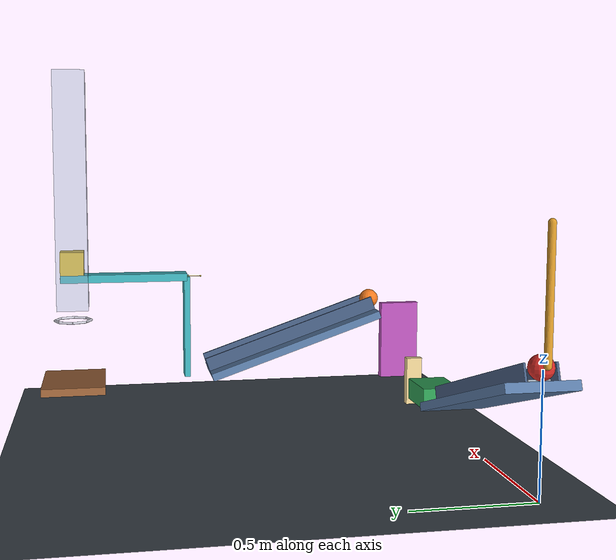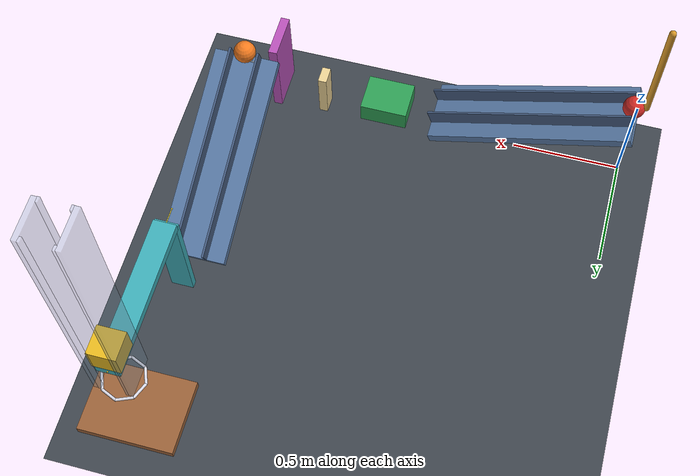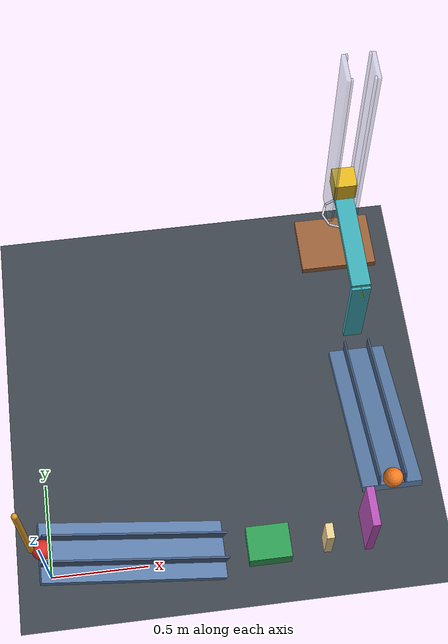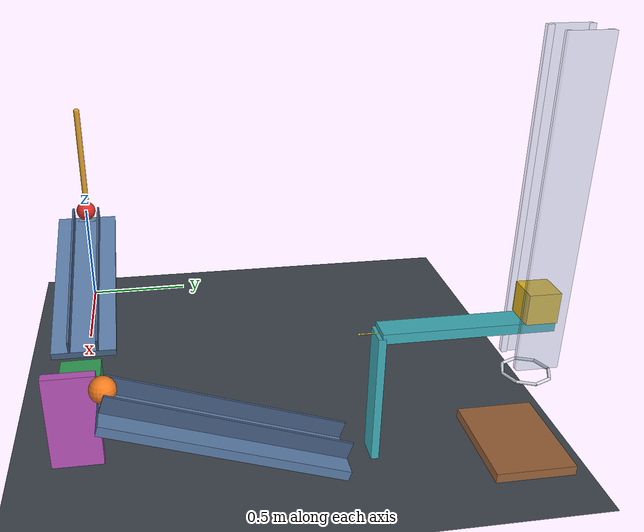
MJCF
<mujoco model="revised_passive_chain_candidate">
  <compiler angle="degree" autolimits="true"/>
  <option timestep="0.002" gravity="0 0 -9.81" integrator="implicitfast" solver="Newton" iterations="100" tolerance="1e-9"/>
  <size nconmax="500" njmax="2000"/>

  <!-- Untested passive candidate. No actuators or prescribed motion. -->
  <!-- All bodies start with zero velocity. -->
  <!-- Sliding friction is 0.68 on every contact geom. -->
  <!-- Low ramp rolling resistance preserves transfer energy. -->
  <!-- Higher floor rolling resistance helps the balls settle after their transfers. -->
  <!-- MuJoCo has no exact restitution attribute. -->
  <!-- solref damping ratio 0.6901 approximates restitution 0.05 for a linear impact. -->
  <!-- ring1 is octagonal with 0.16 m minimum clear opening across opposite facets. -->
  <!-- Its corner clearance accommodates an approximately upright 0.12 m cube. -->
  <!-- A truly circular 0.16 m aperture would not provide that clearance. -->

  <visual>
    <headlight ambient="0.35 0.35 0.35" diffuse="0.65 0.65 0.65" specular="0.2 0.2 0.2"/>
    <map znear="0.01" zfar="30"/>
  </visual>

  <worldbody>
    <light name="main_light" pos="0 -2 5" dir="0 0 -1" directional="true"/>
    <camera name="overview" pos="3.8 -4.8 3.1" xyaxes="0.85 0.53 0 -0.24 0.39 0.89"/>

    <geom name="floor" type="plane" size="8 8 0.1" pos="0 0 0" friction="0.68 0.005 0.01" condim="6" solref="0.006 0.6901" solimp="0.95 0.99 0.001" rgba="0.24 0.27 0.30 1"/>

    <!-- Overall rod length is 0.55 m, including capsule end caps. -->
    <body name="pendulum1" pos="-0.034 0 1.056565">
      <joint name="pendulum1_hinge" type="hinge" axis="0 1 0" range="-100 65" damping="0.04"/>
      <geom name="pendulum1_rod" type="capsule" fromto="0 0 -0.015 0 0 -0.535" size="0.015" mass="0.40" friction="0.68 0.005 0.001" condim="6" solref="0.006 0.6901" solimp="0.95 0.99 0.001" rgba="0.85 0.60 0.16 1"/>
    </body>

    <body name="ball1" pos="0.0162784 0 0.506565">
      <freejoint name="ball1_free"/>
      <geom name="ball1_sphere" type="sphere" size="0.05" mass="0.20" friction="0.68 0.005 0.001" condim="6" solref="0.006 0.6901" solimp="0.95 0.99 0.001" rgba="0.85 0.18 0.16 1"/>
    </body>

    <!-- Top length 0.95 m, width 0.30 m, inclination 19 degrees. -->
    <!-- Downhill top edge is approximately x = 0.898242, z = 0.15. -->
    <body name="ramp1" pos="0.442609 0 0.285734" quat="0.986285602 0 0.165047606 0">
      <geom name="ramp1_surface" type="box" size="0.475 0.15 0.02" density="0" friction="0.68 0.005 0.001" condim="6" solref="0.006 0.6901" solimp="0.95 0.99 0.001" rgba="0.35 0.48 0.65 1"/>
      <geom name="ramp1_rail_left" type="box" pos="0 -0.065 0.055" size="0.475 0.005 0.035" density="0" friction="0.68 0.005 0.001" condim="6" solref="0.006 0.6901" solimp="0.95 0.99 0.001" rgba="0.27 0.36 0.50 1"/>
      <geom name="ramp1_rail_right" type="box" pos="0 0.065 0.055" size="0.475 0.005 0.035" density="0" friction="0.68 0.005 0.001" condim="6" solref="0.006 0.6901" solimp="0.95 0.99 0.001" rgba="0.27 0.36 0.50 1"/>
      <geom name="ramp1_release_lip" type="cylinder" pos="-0.4437 0 0.026" quat="0.707106781 0.707106781 0 0" size="0.004 0.045" density="0" friction="0.68 0.005 0.001" condim="6" solref="0.006 0.6901" solimp="0.95 0.99 0.001" rgba="0.65 0.70 0.75 1"/>
    </body>

    <!-- Initial cart left face x = 1.018242 gives a 0.12 m ramp-exit gap. -->
    <!-- Domino contact occurs at slide q = 0.40 m. -->
    <!-- The travel stop is beyond that contact, avoiding a simultaneous stop impact. -->
    <body name="cart1" pos="1.128242 0 0.13">
      <joint name="cart1_slide" type="slide" axis="1 0 0" range="0 0.43" damping="0.20"/>
      <geom name="cart1_box" type="box" size="0.11 0.09 0.05" mass="0.50" friction="0.68 0.005 0.001" condim="6" solref="0.006 0.6901" solimp="0.95 0.99 0.001" rgba="0.18 0.62 0.33 1"/>
    </body>

    <body name="domino1" pos="1.438242 0 0.12">
      <freejoint name="domino1_free"/>
      <geom name="domino1_box" type="box" size="0.02 0.04 0.12" mass="0.25" friction="0.68 0.005 0.001" condim="6" solref="0.006 0.6901" solimp="0.95 0.99 0.001" rgba="0.92 0.82 0.58 1"/>
    </body>

    <!-- Initial near face is 0.18 m beyond the domino's initial center. -->
    <!-- Flap maximum y = 0.12 remains short of the ramp2 solid body. -->
    <!-- Small negative preload holds the upright flap against its lower stop. -->
    <body name="flap1" pos="1.638242 0.02 0.10">
      <joint name="flap1_hinge" type="hinge" axis="0 1 0" range="0 65" damping="0.04" stiffness="0.01" springref="-2" solreflimit="0.004 1" solimplimit="0.99 0.999 0.0001"/>
      <geom name="flap1_panel" type="box" pos="0 0 0.20" size="0.02 0.10 0.20" mass="0.30" friction="0.68 0.005 0.001" condim="6" solref="0.006 0.6901" solimp="0.95 0.99 0.001" rgba="0.72 0.32 0.72 1"/>
    </body>

    <body name="ball2" pos="1.758242 0.1512784 0.506565">
      <freejoint name="ball2_free"/>
      <geom name="ball2_sphere" type="sphere" size="0.05" mass="0.20" friction="0.68 0.005 0.001" condim="6" solref="0.006 0.6901" solimp="0.95 0.99 0.001" rgba="0.95 0.48 0.12 1"/>
    </body>

    <!-- Ramp2 runs along +y, clear of the flap's panel sweep. -->
    <!-- High top edge y = 0.135; low top edge approximately y = 1.033242, z = 0.15. -->
    <!-- The reduced lip is initially tangent to the ball and has a smaller release barrier. -->
    <body name="ramp2" pos="1.758242 0.577609 0.285734" quat="0.697408655 -0.116706246 0.116706246 0.697408655">
      <geom name="ramp2_surface" type="box" size="0.475 0.15 0.02" density="0" friction="0.68 0.005 0.001" condim="6" solref="0.006 0.6901" solimp="0.95 0.99 0.001" rgba="0.35 0.48 0.65 1"/>
      <geom name="ramp2_rail_left" type="box" pos="0 -0.065 0.055" size="0.475 0.005 0.035" density="0" friction="0.68 0.005 0.001" condim="6" solref="0.006 0.6901" solimp="0.95 0.99 0.001" rgba="0.27 0.36 0.50 1"/>
      <geom name="ramp2_rail_right" type="box" pos="0 0.065 0.055" size="0.475 0.005 0.035" density="0" friction="0.68 0.005 0.001" condim="6" solref="0.006 0.6901" solimp="0.95 0.99 0.001" rgba="0.27 0.36 0.50 1"/>
      <geom name="ramp2_release_lip" type="cylinder" pos="-0.450505103 0 0.023" quat="0.707106781 0.707106781 0 0" size="0.003 0.045" density="0" friction="0.68 0.005 0.001" condim="6" solref="0.004 0.6901" solimp="0.95 0.99 0.001" rgba="0.65 0.70 0.75 1"/>
    </body>

    <!-- Elevated beam with a downward-reaching paddle attached to its left end. -->
    <!-- Paddle initial upstream face y = 1.133242 gives a 0.10 m exit gap. -->
    <!-- Beam and paddle masses sum to 0.55 kg. -->
    <!-- The stretched spring is initially horizontal and produces zero hinge torque. -->
    <body name="seesaw1" pos="1.758242 1.473242 0.65">
      <joint name="seesaw1_hinge" type="hinge" axis="1 0 0" range="0 40" damping="0.04" solreflimit="0.004 1" solimplimit="0.99 0.999 0.0001"/>
      <geom name="seesaw1_beam" type="box" size="0.05 0.325 0.02" mass="0.531" friction="0.68 0.005 0.001" condim="6" solref="0.006 0.6901" solimp="0.95 0.99 0.001" rgba="0.24 0.68 0.72 1"/>
      <geom name="seesaw1_left_striking_paddle" type="box" pos="0 -0.325 -0.265" size="0.05 0.015 0.265" mass="0.019" friction="0.68 0.005 0.001" condim="6" solref="0.006 0.6901" solimp="0.95 0.99 0.001" rgba="0.24 0.68 0.72 1"/>
      <site name="seesaw1_spring_attachment" pos="0 0.325 0" size="0.004" rgba="0.9 0.8 0.2 1"/>
    </body>

    <site name="seesaw1_spring_anchor" pos="1.758242 1.073242 0.65" size="0.004" rgba="0.9 0.8 0.2 1"/>

    <body name="block1" pos="1.758242 1.738242 0.73">
      <freejoint name="block1_free"/>
      <geom name="block1_cube" type="box" size="0.06 0.06 0.06" mass="0.35" friction="0.68 0.005 0.001" condim="6" solref="0.006 0.6901" solimp="0.95 0.99 0.001" rgba="0.90 0.72 0.12 1"/>
    </body>

    <!-- Vertical guides constrain lateral drift and rotation, not vertical translation. -->
    <!-- Guide bottoms are at z = 0.49, above the ring. -->
    <!-- Corner posts leave a central slot for the 0.10 m-wide seesaw beam. -->
    <body name="block1_guides" pos="1.758242 1.738242 1.10">
      <geom name="block1_guides_left" type="box" pos="-0.071 0 0" size="0.01 0.08 0.61" density="0" friction="0.68 0.005 0.001" condim="6" solref="0.006 0.6901" solimp="0.95 0.99 0.001" rgba="0.55 0.65 0.75 0.35"/>
      <geom name="block1_guides_right" type="box" pos="0.071 0 0" size="0.01 0.08 0.61" density="0" friction="0.68 0.005 0.001" condim="6" solref="0.006 0.6901" solimp="0.95 0.99 0.001" rgba="0.55 0.65 0.75 0.35"/>
      <geom name="block1_guides_rear_left" type="box" pos="-0.057 -0.071 0" size="0.005 0.01 0.61" density="0" friction="0.68 0.005 0.001" condim="6" solref="0.006 0.6901" solimp="0.95 0.99 0.001" rgba="0.55 0.65 0.75 0.35"/>
      <geom name="block1_guides_rear_right" type="box" pos="0.057 -0.071 0" size="0.005 0.01 0.61" density="0" friction="0.68 0.005 0.001" condim="6" solref="0.006 0.6901" solimp="0.95 0.99 0.001" rgba="0.55 0.65 0.75 0.35"/>
      <geom name="block1_guides_front_left" type="box" pos="-0.057 0.071 0" size="0.005 0.01 0.61" density="0" friction="0.68 0.005 0.001" condim="6" solref="0.006 0.6901" solimp="0.95 0.99 0.001" rgba="0.55 0.65 0.75 0.35"/>
      <geom name="block1_guides_front_right" type="box" pos="0.057 0.071 0" size="0.005 0.01 0.61" density="0" friction="0.68 0.005 0.001" condim="6" solref="0.006 0.6901" solimp="0.95 0.99 0.001" rgba="0.55 0.65 0.75 0.35"/>
    </body>

    <!-- Closed horizontal octagonal ring. -->
    <!-- Vertex radius = (0.08 + 0.006) / cos(pi/8). -->
    <!-- Minimum inner opening across opposite facets is 0.16 m. -->
    <!-- Center is directly 0.30 m below block1's initial center. -->
    <body name="ring1" pos="1.758242 1.738242 0.43">
      <geom name="ring1_segment_00" type="capsule" fromto="0.093085729 0 0 0.065821550 0.065821550 0" size="0.006" density="0" friction="0.68 0.005 0.001" condim="6" solref="0.006 0.6901" solimp="0.95 0.99 0.001" rgba="0.85 0.85 0.90 1"/>
      <geom name="ring1_segment_01" type="capsule" fromto="0.065821550 0.065821550 0 0 0.093085729 0" size="0.006" density="0" friction="0.68 0.005 0.001" condim="6" solref="0.006 0.6901" solimp="0.95 0.99 0.001" rgba="0.85 0.85 0.90 1"/>
      <geom name="ring1_segment_02" type="capsule" fromto="0 0.093085729 0 -0.065821550 0.065821550 0" size="0.006" density="0" friction="0.68 0.005 0.001" condim="6" solref="0.006 0.6901" solimp="0.95 0.99 0.001" rgba="0.85 0.85 0.90 1"/>
      <geom name="ring1_segment_03" type="capsule" fromto="-0.065821550 0.065821550 0 -0.093085729 0 0" size="0.006" density="0" friction="0.68 0.005 0.001" condim="6" solref="0.006 0.6901" solimp="0.95 0.99 0.001" rgba="0.85 0.85 0.90 1"/>
      <geom name="ring1_segment_04" type="capsule" fromto="-0.093085729 0 0 -0.065821550 -0.065821550 0" size="0.006" density="0" friction="0.68 0.005 0.001" condim="6" solref="0.006 0.6901" solimp="0.95 0.99 0.001" rgba="0.85 0.85 0.90 1"/>
      <geom name="ring1_segment_05" type="capsule" fromto="-0.065821550 -0.065821550 0 0 -0.093085729 0" size="0.006" density="0" friction="0.68 0.005 0.001" condim="6" solref="0.006 0.6901" solimp="0.95 0.99 0.001" rgba="0.85 0.85 0.90 1"/>
      <geom name="ring1_segment_06" type="capsule" fromto="0 -0.093085729 0 0.065821550 -0.065821550 0" size="0.006" density="0" friction="0.68 0.005 0.001" condim="6" solref="0.006 0.6901" solimp="0.95 0.99 0.001" rgba="0.85 0.85 0.90 1"/>
      <geom name="ring1_segment_07" type="capsule" fromto="0.065821550 -0.065821550 0 0.093085729 0 0" size="0.006" density="0" friction="0.68 0.005 0.001" condim="6" solref="0.006 0.6901" solimp="0.95 0.99 0.001" rgba="0.85 0.85 0.90 1"/>
    </body>

    <!-- Door top z = 0.12; upright block contact center z = 0.18. -->
    <!-- That contact center is 0.25 m below the ring center. -->
    <body name="door1" pos="1.548242 1.738242 0.10">
      <joint name="door1_hinge" type="hinge" axis="0 1 0" range="-5 80" damping="0.04" stiffness="5" springref="-10.623"/>
      <geom name="door1_panel" type="box" pos="0.21 0 0" size="0.21 0.16 0.02" mass="0.45" friction="0.68 0.005 0.001" condim="6" solref="0.006 0.6901" solimp="0.95 0.99 0.001" rgba="0.60 0.38 0.22 1"/>
    </body>
  </worldbody>

  <tendon>
    <spatial name="seesaw1_overcenter_spring" stiffness="220" damping="0" springlength="0.12" width="0.002" rgba="0.9 0.8 0.2 1">
      <site site="seesaw1_spring_anchor"/>
      <site site="seesaw1_spring_attachment"/>
    </spatial>
  </tendon>

  <keyframe>
    <!-- Keyframe hinge positions are radians; omitted qvel defaults to zero. -->
    <key name="start" qpos="0.959931089 0.0162784 0 0.506565 1 0 0 0 0 1.438242 0 0.12 1 0 0 0 0 1.758242 0.1512784 0.506565 1 0 0 0 0 1.758242 1.738242 0.73 1 0 0 0 0"/>
  </keyframe>
</mujoco>
